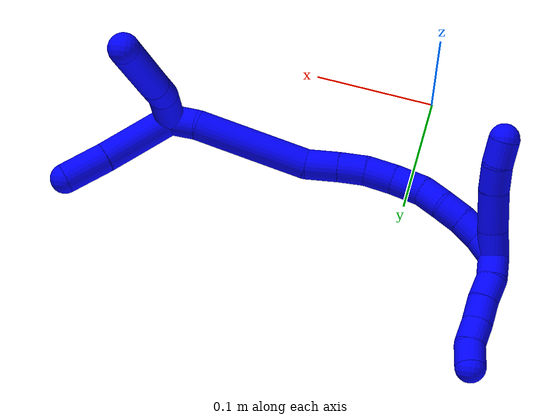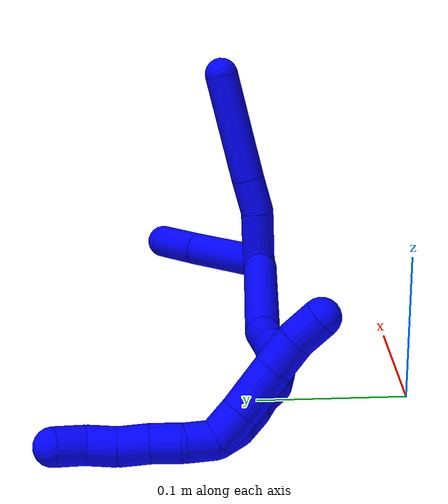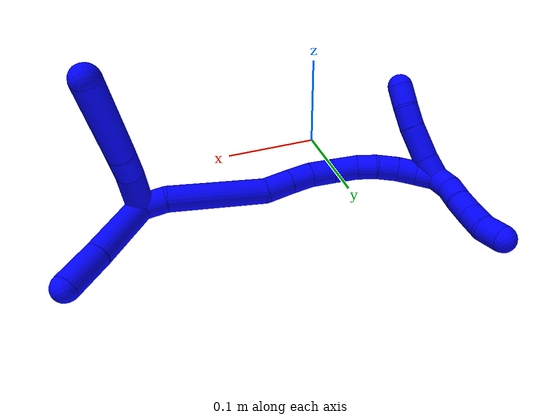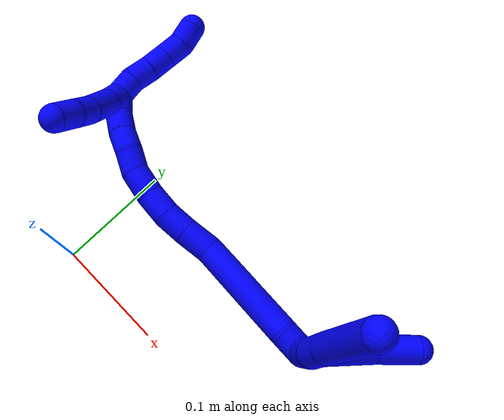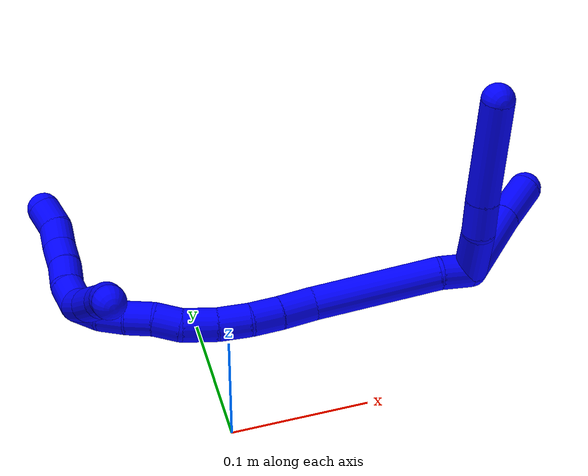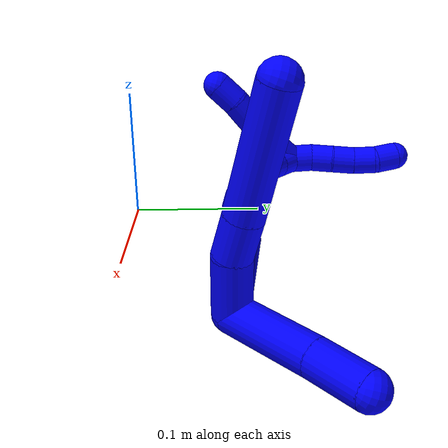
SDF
<sdf version="1.7">
 <world name="default">
  <model name="photoneo_s_sensor">
   <static>1</static>
   <pose>0 0 2 1.57079 1.57079 3.14159</pose>
   <link name="link">
    <inertial><mass>0.1</mass></inertial>
    <sensor name="sensor" type="depth">
     <update_rate>30</update_rate>
     <camera>
      <horizontal_fov>1.22</horizontal_fov>
      <image><width>1920</width><height>1200</height><format>B8G8R8</format></image>
      <clip><near>0.1</near><far>4</far></clip>
      <depth_camera><output>points</output></depth_camera>
     </camera>
     <plugin name="camera_plugin" filename="libgazebo_ros_depth_camera.so">
      <baseline>0.2</baseline>
      <alwaysOn>1</alwaysOn>
      <updateRate>0.0</updateRate>
      <cameraName>camera_ir</cameraName>
      <imageTopicName>/camera/color/image_raw</imageTopicName>
      <cameraInfoTopicName>/camera/color/camera_info</cameraInfoTopicName>
      <depthImageTopicName>/camera/depth/image_raw</depthImageTopicName>
      <depthImageCameraInfoTopicName>/camera/depth/camera_info</depthImageCameraInfoTopicName>
      <pointCloudTopicName>/camera/depth/points</pointCloudTopicName>
      <frameName>fr_optical</frameName>
      <pointCloudCutoff>0.1</pointCloudCutoff>
      <pointCloudCutoffMax>2.0</pointCloudCutoffMax>
      <distortionK1>0</distortionK1>
      <distortionK2>0</distortionK2>
      <distortionK3>0</distortionK3>
      <distortionT1>0</distortionT1>
      <distortionT2>0</distortionT2>
      <CxPrime>0</CxPrime>
      <Cx>0</Cx>
      <Cy>0</Cy>
      <focalLength>0</focalLength>
      <hackBaseline>0</hackBaseline>
     </plugin>
    </sensor>
   </link>
  </model>
  <model name="bin">
   <static>1</static>
   <link name="bottom">
    <collision name="collision-bottom">
     <pose>0 0 -0.01 0 -0 0</pose>
     <geometry><box><size>0.8 0.6 0.02</size></box></geometry>
     <surface>
      <friction><ode><mu>100</mu><mu2>100</mu2></ode></friction>
      <contact><collide_bitmask>65535</collide_bitmask></contact>
     </surface>
    </collision>
   </link>
   <link name="west_wall">
    <collision name="collision-west_wall">
     <pose>-0.41 0 0.1 0 -0 0</pose>
     <geometry><box><size>0.02 0.6 0.2</size></box></geometry>
     <surface>
      <friction><ode><mu>100</mu><mu2>100</mu2></ode></friction>
      <contact><collide_bitmask>65535</collide_bitmask></contact>
     </surface>
    </collision>
   </link>
   <link name="east_wall">
    <collision name="collision-east_wall">
     <pose>0.41 0 0.1 0 -0 0</pose>
     <geometry><box><size>0.02 0.6 0.2</size></box></geometry>
     <surface>
      <friction><ode><mu>100</mu><mu2>100</mu2></ode></friction>
      <contact><collide_bitmask>65535</collide_bitmask></contact>
     </surface>
    </collision>
   </link>
   <link name="south_wall">
    <collision name="collision-south_wall">
     <pose>0 -0.31 0.1 0 -0 0</pose>
     <geometry><box><size>0.8 0.02 0.2</size></box></geometry>
     <surface>
      <friction><ode><mu>100</mu><mu2>100</mu2></ode></friction>
      <contact><collide_bitmask>65535</collide_bitmask></contact>
     </surface>
    </collision>
   </link>
   <link name="north_wall">
    <collision name="collision-north_wall">
     <pose>0 0.31 0.1 0 -0 0</pose>
     <geometry><box><size>0.8 0.02 0.2</size></box></geometry>
     <surface>
      <friction><ode><mu>100</mu><mu2>100</mu2></ode></friction>
      <contact><collide_bitmask>65535</collide_bitmask></contact>
     </surface>
    </collision>
   </link>
  </model>
  <model name="1">
   <static>0</static>
   <link name="1">
    <collision name="collision-cylinder-e_1_2_8">
     <pose>0.000843 -0.018635 -0.007233 1.94104 0.042157 0.061574</pose>
     <geometry><cylinder><radius>0.0125</radius><length>0.040015</length></cylinder></geometry>
     <surface>
      <friction><ode><mu>1.16</mu><mu2>1.16</mu2><slip1>0</slip1><slip2>0</slip2></ode></friction>
      <contact><ode><kp>1e+06</kp><kd>1</kd><max_vel>0</max_vel><min_depth>0.001</min_depth></ode></contact>
     </surface>
    </collision>
    <visual name="visual-cylinder-e_1_2_8">
     <pose>0.000843 -0.018635 -0.007233 1.94104 0.042157 0.061574</pose>
     <geometry><cylinder><radius>0.0125</radius><length>0.040015</length></cylinder></geometry>
     <material><ambient>0 0 1 1</ambient></material>
    </visual>
    <collision name="collision-cylinder-e_2_8_9">
     <pose>0.003111 -0.050708 -0.016261 1.70355 0.10472 0.119601</pose>
     <geometry><cylinder><radius>0.0125</radius><length>0.027263</length></cylinder></geometry>
     <surface>
      <friction><ode><mu>1.16</mu><mu2>1.16</mu2><slip1>0</slip1><slip2>0</slip2></ode></friction>
      <contact><ode><kp>1e+06</kp><kd>1</kd><max_vel>0</max_vel><min_depth>0.001</min_depth></ode></contact>
     </surface>
    </collision>
    <visual name="visual-cylinder-e_2_8_9">
     <pose>0.003111 -0.050708 -0.016261 1.70355 0.10472 0.119601</pose>
     <geometry><cylinder><radius>0.0125</radius><length>0.027263</length></cylinder></geometry>
     <material><ambient>0 0 1 1</ambient></material>
    </visual>
    <collision name="collision-cylinder-e_3_9_6">
     <pose>0.009436 -0.104678 -0.024676 1.73271 0.118734 0.139639</pose>
     <geometry><cylinder><radius>0.0125</radius><length>0.082721</length></cylinder></geometry>
     <surface>
      <friction><ode><mu>1.16</mu><mu2>1.16</mu2><slip1>0</slip1><slip2>0</slip2></ode></friction>
      <contact><ode><kp>1e+06</kp><kd>1</kd><max_vel>0</max_vel><min_depth>0.001</min_depth></ode></contact>
     </surface>
    </collision>
    <visual name="visual-cylinder-e_3_9_6">
     <pose>0.009436 -0.104678 -0.024676 1.73271 0.118734 0.139639</pose>
     <geometry><cylinder><radius>0.0125</radius><length>0.082721</length></cylinder></geometry>
     <material><ambient>0 0 1 1</ambient></material>
    </visual>
    <collision name="collision-cylinder-e_1_2_10">
     <pose>0.023205 -0.007101 0.019633 0.34706 0.838148 0.155857</pose>
     <geometry><cylinder><radius>0.0125</radius><length>0.062429</length></cylinder></geometry>
     <surface>
      <friction><ode><mu>1.16</mu><mu2>1.16</mu2><slip1>0</slip1><slip2>0</slip2></ode></friction>
      <contact><ode><kp>1e+06</kp><kd>1</kd><max_vel>0</max_vel><min_depth>0.001</min_depth></ode></contact>
     </surface>
    </collision>
    <visual name="visual-cylinder-e_1_2_10">
     <pose>0.023205 -0.007101 0.019633 0.34706 0.838148 0.155857</pose>
     <geometry><cylinder><radius>0.0125</radius><length>0.062429</length></cylinder></geometry>
     <material><ambient>0 0 1 1</ambient></material>
    </visual>
    <collision name="collision-cylinder-e_2_10_5">
     <pose>0.06099 -0.018219 0.050409 0.345955 0.888512 0.165951</pose>
     <geometry><cylinder><radius>0.0125</radius><length>0.037571</length></cylinder></geometry>
     <surface>
      <friction><ode><mu>1.16</mu><mu2>1.16</mu2><slip1>0</slip1><slip2>0</slip2></ode></friction>
      <contact><ode><kp>1e+06</kp><kd>1</kd><max_vel>0</max_vel><min_depth>0.001</min_depth></ode></contact>
     </surface>
    </collision>
    <visual name="visual-cylinder-e_2_10_5">
     <pose>0.06099 -0.018219 0.050409 0.345955 0.888512 0.165951</pose>
     <geometry><cylinder><radius>0.0125</radius><length>0.037571</length></cylinder></geometry>
     <material><ambient>0 0 1 1</ambient></material>
    </visual>
    <collision name="collision-cylinder-e_1_2_11">
     <pose>-0.011835 -0.001427 0.001003 0.958294 -1.42445 -0.843315</pose>
     <geometry><cylinder><radius>0.0125</radius><length>0.023926</length></cylinder></geometry>
     <surface>
      <friction><ode><mu>1.16</mu><mu2>1.16</mu2><slip1>0</slip1><slip2>0</slip2></ode></friction>
      <contact><ode><kp>1e+06</kp><kd>1</kd><max_vel>0</max_vel><min_depth>0.001</min_depth></ode></contact>
     </surface>
    </collision>
    <visual name="visual-cylinder-e_1_2_11">
     <pose>-0.011835 -0.001427 0.001003 0.958294 -1.42445 -0.843315</pose>
     <geometry><cylinder><radius>0.0125</radius><length>0.023926</length></cylinder></geometry>
     <material><ambient>0 0 1 1</ambient></material>
    </visual>
    <collision name="collision-cylinder-e_2_11_12">
     <pose>-0.070073 0.002141 0.012131 -0.458359 -1.33213 0.362625</pose>
     <geometry><cylinder><radius>0.0125</radius><length>0.095514</length></cylinder></geometry>
     <surface>
      <friction><ode><mu>1.16</mu><mu2>1.16</mu2><slip1>0</slip1><slip2>0</slip2></ode></friction>
      <contact><ode><kp>1e+06</kp><kd>1</kd><max_vel>0</max_vel><min_depth>0.001</min_depth></ode></contact>
     </surface>
    </collision>
    <visual name="visual-cylinder-e_2_11_12">
     <pose>-0.070073 0.002141 0.012131 -0.458359 -1.33213 0.362625</pose>
     <geometry><cylinder><radius>0.0125</radius><length>0.095514</length></cylinder></geometry>
     <material><ambient>0 0 1 1</ambient></material>
    </visual>
    <collision name="collision-cylinder-e_3_12_13">
     <pose>-0.130024 0.007223 0.021778 -2.96188 -1.53498 2.95536</pose>
     <geometry><cylinder><radius>0.0125</radius><length>0.027113</length></cylinder></geometry>
     <surface>
      <friction><ode><mu>1.16</mu><mu2>1.16</mu2><slip1>0</slip1><slip2>0</slip2></ode></friction>
      <contact><ode><kp>1e+06</kp><kd>1</kd><max_vel>0</max_vel><min_depth>0.001</min_depth></ode></contact>
     </surface>
    </collision>
    <visual name="visual-cylinder-e_3_12_13">
     <pose>-0.130024 0.007223 0.021778 -2.96188 -1.53498 2.95536</pose>
     <geometry><cylinder><radius>0.0125</radius><length>0.027113</length></cylinder></geometry>
     <material><ambient>0 0 1 1</ambient></material>
    </visual>
    <collision name="collision-cylinder-e_4_13_14">
     <pose>-0.154961 0.007085 0.021463 0.943408 -1.54643 -0.92382</pose>
     <geometry><cylinder><radius>0.0125</radius><length>0.022784</length></cylinder></geometry>
     <surface>
      <friction><ode><mu>1.16</mu><mu2>1.16</mu2><slip1>0</slip1><slip2>0</slip2></ode></friction>
      <contact><ode><kp>1e+06</kp><kd>1</kd><max_vel>0</max_vel><min_depth>0.001</min_depth></ode></contact>
     </surface>
    </collision>
    <visual name="visual-cylinder-e_4_13_14">
     <pose>-0.154961 0.007085 0.021463 0.943408 -1.54643 -0.92382</pose>
     <geometry><cylinder><radius>0.0125</radius><length>0.022784</length></cylinder></geometry>
     <material><ambient>0 0 1 1</ambient></material>
    </visual>
    <collision name="collision-cylinder-e_5_14_15">
     <pose>-0.178228 0.006655 0.023856 0.092076 -1.38448 -0.076358</pose>
     <geometry><cylinder><radius>0.0125</radius><length>0.024175</length></cylinder></geometry>
     <surface>
      <friction><ode><mu>1.16</mu><mu2>1.16</mu2><slip1>0</slip1><slip2>0</slip2></ode></friction>
      <contact><ode><kp>1e+06</kp><kd>1</kd><max_vel>0</max_vel><min_depth>0.001</min_depth></ode></contact>
     </surface>
    </collision>
    <visual name="visual-cylinder-e_5_14_15">
     <pose>-0.178228 0.006655 0.023856 0.092076 -1.38448 -0.076358</pose>
     <geometry><cylinder><radius>0.0125</radius><length>0.024175</length></cylinder></geometry>
     <material><ambient>0 0 1 1</ambient></material>
    </visual>
    <collision name="collision-cylinder-e_6_15_16">
     <pose>-0.20252 0.004928 0.029423 0.427586 -1.2835 -0.321676</pose>
     <geometry><cylinder><radius>0.0125</radius><length>0.025888</length></cylinder></geometry>
     <surface>
      <friction><ode><mu>1.16</mu><mu2>1.16</mu2><slip1>0</slip1><slip2>0</slip2></ode></friction>
      <contact><ode><kp>1e+06</kp><kd>1</kd><max_vel>0</max_vel><min_depth>0.001</min_depth></ode></contact>
     </surface>
    </collision>
    <visual name="visual-cylinder-e_6_15_16">
     <pose>-0.20252 0.004928 0.029423 0.427586 -1.2835 -0.321676</pose>
     <geometry><cylinder><radius>0.0125</radius><length>0.025888</length></cylinder></geometry>
     <material><ambient>0 0 1 1</ambient></material>
    </visual>
    <collision name="collision-cylinder-e_7_16_17">
     <pose>-0.223501 0.000851 0.037608 0.485195 -1.00175 -0.269312</pose>
     <geometry><cylinder><radius>0.0125</radius><length>0.020341</length></cylinder></geometry>
     <surface>
      <friction><ode><mu>1.16</mu><mu2>1.16</mu2><slip1>0</slip1><slip2>0</slip2></ode></friction>
      <contact><ode><kp>1e+06</kp><kd>1</kd><max_vel>0</max_vel><min_depth>0.001</min_depth></ode></contact>
     </surface>
    </collision>
    <visual name="visual-cylinder-e_7_16_17">
     <pose>-0.223501 0.000851 0.037608 0.485195 -1.00175 -0.269312</pose>
     <geometry><cylinder><radius>0.0125</radius><length>0.020341</length></cylinder></geometry>
     <material><ambient>0 0 1 1</ambient></material>
    </visual>
    <collision name="collision-cylinder-e_8_17_18">
     <pose>-0.240782 -0.002171 0.047505 0.092106 -1.04373 -0.052989</pose>
     <geometry><cylinder><radius>0.0125</radius><length>0.020161</length></cylinder></geometry>
     <surface>
      <friction><ode><mu>1.16</mu><mu2>1.16</mu2><slip1>0</slip1><slip2>0</slip2></ode></friction>
      <contact><ode><kp>1e+06</kp><kd>1</kd><max_vel>0</max_vel><min_depth>0.001</min_depth></ode></contact>
     </surface>
    </collision>
    <visual name="visual-cylinder-e_8_17_18">
     <pose>-0.240782 -0.002171 0.047505 0.092106 -1.04373 -0.052989</pose>
     <geometry><cylinder><radius>0.0125</radius><length>0.020161</length></cylinder></geometry>
     <material><ambient>0 0 1 1</ambient></material>
    </visual>
    <collision name="collision-cylinder-e_9_18_19">
     <pose>-0.257344 -0.003239 0.058762 0.096572 -0.899383 -0.046641</pose>
     <geometry><cylinder><radius>0.0125</radius><length>0.020052</length></cylinder></geometry>
     <surface>
      <friction><ode><mu>1.16</mu><mu2>1.16</mu2><slip1>0</slip1><slip2>0</slip2></ode></friction>
      <contact><ode><kp>1e+06</kp><kd>1</kd><max_vel>0</max_vel><min_depth>0.001</min_depth></ode></contact>
     </surface>
    </collision>
    <visual name="visual-cylinder-e_9_18_19">
     <pose>-0.257344 -0.003239 0.058762 0.096572 -0.899383 -0.046641</pose>
     <geometry><cylinder><radius>0.0125</radius><length>0.020052</length></cylinder></geometry>
     <material><ambient>0 0 1 1</ambient></material>
    </visual>
    <collision name="collision-cylinder-e_10_19_1">
     <pose>-0.27192 -0.006137 0.072037 0.314252 -0.735678 -0.121961</pose>
     <geometry><cylinder><radius>0.0125</radius><length>0.020046</length></cylinder></geometry>
     <surface>
      <friction><ode><mu>1.16</mu><mu2>1.16</mu2><slip1>0</slip1><slip2>0</slip2></ode></friction>
      <contact><ode><kp>1e+06</kp><kd>1</kd><max_vel>0</max_vel><min_depth>0.001</min_depth></ode></contact>
     </surface>
    </collision>
    <visual name="visual-cylinder-e_10_19_1">
     <pose>-0.27192 -0.006137 0.072037 0.314252 -0.735678 -0.121961</pose>
     <geometry><cylinder><radius>0.0125</radius><length>0.020046</length></cylinder></geometry>
     <material><ambient>0 0 1 1</ambient></material>
    </visual>
    <collision name="collision-cylinder-e_1_1_20">
     <pose>-0.277113 -0.01292 0.068894 2.72758 0.136588 0.629718</pose>
     <geometry><cylinder><radius>0.0125</radius><length>0.022513</length></cylinder></geometry>
     <surface>
      <friction><ode><mu>1.16</mu><mu2>1.16</mu2><slip1>0</slip1><slip2>0</slip2></ode></friction>
      <contact><ode><kp>1e+06</kp><kd>1</kd><max_vel>0</max_vel><min_depth>0.001</min_depth></ode></contact>
     </surface>
    </collision>
    <visual name="visual-cylinder-e_1_1_20">
     <pose>-0.277113 -0.01292 0.068894 2.72758 0.136588 0.629718</pose>
     <geometry><cylinder><radius>0.0125</radius><length>0.022513</length></cylinder></geometry>
     <material><ambient>0 0 1 1</ambient></material>
    </visual>
    <collision name="collision-cylinder-e_2_20_21">
     <pose>-0.274212 -0.02554 0.043804 2.64139 0.080502 0.312732</pose>
     <geometry><cylinder><radius>0.0125</radius><length>0.034027</length></cylinder></geometry>
     <surface>
      <friction><ode><mu>1.16</mu><mu2>1.16</mu2><slip1>0</slip1><slip2>0</slip2></ode></friction>
      <contact><ode><kp>1e+06</kp><kd>1</kd><max_vel>0</max_vel><min_depth>0.001</min_depth></ode></contact>
     </surface>
    </collision>
    <visual name="visual-cylinder-e_2_20_21">
     <pose>-0.274212 -0.02554 0.043804 2.64139 0.080502 0.312732</pose>
     <geometry><cylinder><radius>0.0125</radius><length>0.034027</length></cylinder></geometry>
     <material><ambient>0 0 1 1</ambient></material>
    </visual>
    <collision name="collision-cylinder-e_3_21_22">
     <pose>-0.273079 -0.039201 0.019377 2.61664 -0.021267 -0.079118</pose>
     <geometry><cylinder><radius>0.0125</radius><length>0.022067</length></cylinder></geometry>
     <surface>
      <friction><ode><mu>1.16</mu><mu2>1.16</mu2><slip1>0</slip1><slip2>0</slip2></ode></friction>
      <contact><ode><kp>1e+06</kp><kd>1</kd><max_vel>0</max_vel><min_depth>0.001</min_depth></ode></contact>
     </surface>
    </collision>
    <visual name="visual-cylinder-e_3_21_22">
     <pose>-0.273079 -0.039201 0.019377 2.61664 -0.021267 -0.079118</pose>
     <geometry><cylinder><radius>0.0125</radius><length>0.022067</length></cylinder></geometry>
     <material><ambient>0 0 1 1</ambient></material>
    </visual>
    <collision name="collision-cylinder-e_4_22_4">
     <pose>-0.27491 -0.048619 -4e-06 2.76501 -0.149775 -0.750207</pose>
     <geometry><cylinder><radius>0.0125</radius><length>0.021393</length></cylinder></geometry>
     <surface>
      <friction><ode><mu>1.16</mu><mu2>1.16</mu2><slip1>0</slip1><slip2>0</slip2></ode></friction>
      <contact><ode><kp>1e+06</kp><kd>1</kd><max_vel>0</max_vel><min_depth>0.001</min_depth></ode></contact>
     </surface>
    </collision>
    <visual name="visual-cylinder-e_4_22_4">
     <pose>-0.27491 -0.048619 -4e-06 2.76501 -0.149775 -0.750207</pose>
     <geometry><cylinder><radius>0.0125</radius><length>0.021393</length></cylinder></geometry>
     <material><ambient>0 0 1 1</ambient></material>
    </visual>
    <collision name="collision-cylinder-e_1_1_23">
     <pose>-0.279172 -0.012144 0.088375 0.380685 -0.052654 -0.010147</pose>
     <geometry><cylinder><radius>0.0125</radius><length>0.02</length></cylinder></geometry>
     <surface>
      <friction><ode><mu>1.16</mu><mu2>1.16</mu2><slip1>0</slip1><slip2>0</slip2></ode></friction>
      <contact><ode><kp>1e+06</kp><kd>1</kd><max_vel>0</max_vel><min_depth>0.001</min_depth></ode></contact>
     </surface>
    </collision>
    <visual name="visual-cylinder-e_1_1_23">
     <pose>-0.279172 -0.012144 0.088375 0.380685 -0.052654 -0.010147</pose>
     <geometry><cylinder><radius>0.0125</radius><length>0.02</length></cylinder></geometry>
     <material><ambient>0 0 1 1</ambient></material>
    </visual>
    <collision name="collision-cylinder-e_2_23_24">
     <pose>-0.277473 -0.019207 0.106801 0.350977 0.224424 0.039956</pose>
     <geometry><cylinder><radius>0.0125</radius><length>0.02</length></cylinder></geometry>
     <surface>
      <friction><ode><mu>1.16</mu><mu2>1.16</mu2><slip1>0</slip1><slip2>0</slip2></ode></friction>
      <contact><ode><kp>1e+06</kp><kd>1</kd><max_vel>0</max_vel><min_depth>0.001</min_depth></ode></contact>
     </surface>
    </collision>
    <visual name="visual-cylinder-e_2_23_24">
     <pose>-0.277473 -0.019207 0.106801 0.350977 0.224424 0.039956</pose>
     <geometry><cylinder><radius>0.0125</radius><length>0.02</length></cylinder></geometry>
     <material><ambient>0 0 1 1</ambient></material>
    </visual>
    <collision name="collision-cylinder-e_3_24_25">
     <pose>-0.27413 -0.025543 0.125434 0.305043 0.112044 0.017241</pose>
     <geometry><cylinder><radius>0.0125</radius><length>0.02</length></cylinder></geometry>
     <surface>
      <friction><ode><mu>1.16</mu><mu2>1.16</mu2><slip1>0</slip1><slip2>0</slip2></ode></friction>
      <contact><ode><kp>1e+06</kp><kd>1</kd><max_vel>0</max_vel><min_depth>0.001</min_depth></ode></contact>
     </surface>
    </collision>
    <visual name="visual-cylinder-e_3_24_25">
     <pose>-0.27413 -0.025543 0.125434 0.305043 0.112044 0.017241</pose>
     <geometry><cylinder><radius>0.0125</radius><length>0.02</length></cylinder></geometry>
     <material><ambient>0 0 1 1</ambient></material>
    </visual>
    <collision name="collision-cylinder-e_4_25_26">
     <pose>-0.271341 -0.032792 0.143802 0.447272 0.167862 0.038264</pose>
     <geometry><cylinder><radius>0.0125</radius><length>0.02</length></cylinder></geometry>
     <surface>
      <friction><ode><mu>1.16</mu><mu2>1.16</mu2><slip1>0</slip1><slip2>0</slip2></ode></friction>
      <contact><ode><kp>1e+06</kp><kd>1</kd><max_vel>0</max_vel><min_depth>0.001</min_depth></ode></contact>
     </surface>
    </collision>
    <visual name="visual-cylinder-e_4_25_26">
     <pose>-0.271341 -0.032792 0.143802 0.447272 0.167862 0.038264</pose>
     <geometry><cylinder><radius>0.0125</radius><length>0.02</length></cylinder></geometry>
     <material><ambient>0 0 1 1</ambient></material>
    </visual>
    <collision name="collision-cylinder-e_5_26_3">
     <pose>-0.271235 -0.041574 0.161475 0.475132 -0.157103 -0.038115</pose>
     <geometry><cylinder><radius>0.0125</radius><length>0.02</length></cylinder></geometry>
     <surface>
      <friction><ode><mu>1.16</mu><mu2>1.16</mu2><slip1>0</slip1><slip2>0</slip2></ode></friction>
      <contact><ode><kp>1e+06</kp><kd>1</kd><max_vel>0</max_vel><min_depth>0.001</min_depth></ode></contact>
     </surface>
    </collision>
    <visual name="visual-cylinder-e_5_26_3">
     <pose>-0.271235 -0.041574 0.161475 0.475132 -0.157103 -0.038115</pose>
     <geometry><cylinder><radius>0.0125</radius><length>0.02</length></cylinder></geometry>
     <material><ambient>0 0 1 1</ambient></material>
    </visual>
    <collision name="collision-sphere-3">
     <pose>-0.272799 -0.046093 0.170258 0 -0 0</pose>
     <geometry><sphere><radius>0.0125</radius></sphere></geometry>
     <surface>
      <friction><ode><mu>1.16</mu><mu2>1.16</mu2><slip1>0</slip1><slip2>0</slip2></ode></friction>
      <contact><ode><kp>1e+06</kp><kd>1</kd><max_vel>0</max_vel><min_depth>0.001</min_depth></ode></contact>
     </surface>
    </collision>
    <visual name="visual-sphere-3">
     <pose>-0.272799 -0.046093 0.170258 0 -0 0</pose>
     <geometry><sphere><radius>0.0125</radius></sphere></geometry>
     <material><ambient>0 0 1 1</ambient></material>
    </visual>
    <collision name="collision-sphere-26">
     <pose>-0.26967 -0.037056 0.152692 0 -0 0</pose>
     <geometry><sphere><radius>0.0125</radius></sphere></geometry>
     <surface>
      <friction><ode><mu>1.16</mu><mu2>1.16</mu2><slip1>0</slip1><slip2>0</slip2></ode></friction>
      <contact><ode><kp>1e+06</kp><kd>1</kd><max_vel>0</max_vel><min_depth>0.001</min_depth></ode></contact>
     </surface>
    </collision>
    <visual name="visual-sphere-26">
     <pose>-0.26967 -0.037056 0.152692 0 -0 0</pose>
     <geometry><sphere><radius>0.0125</radius></sphere></geometry>
     <material><ambient>0 0 1 1</ambient></material>
    </visual>
    <collision name="collision-sphere-25">
     <pose>-0.273011 -0.028528 0.134913 0 -0 0</pose>
     <geometry><sphere><radius>0.0125</radius></sphere></geometry>
     <surface>
      <friction><ode><mu>1.16</mu><mu2>1.16</mu2><slip1>0</slip1><slip2>0</slip2></ode></friction>
      <contact><ode><kp>1e+06</kp><kd>1</kd><max_vel>0</max_vel><min_depth>0.001</min_depth></ode></contact>
     </surface>
    </collision>
    <visual name="visual-sphere-25">
     <pose>-0.273011 -0.028528 0.134913 0 -0 0</pose>
     <geometry><sphere><radius>0.0125</radius></sphere></geometry>
     <material><ambient>0 0 1 1</ambient></material>
    </visual>
    <collision name="collision-sphere-24">
     <pose>-0.275248 -0.022559 0.115956 0 -0 0</pose>
     <geometry><sphere><radius>0.0125</radius></sphere></geometry>
     <surface>
      <friction><ode><mu>1.16</mu><mu2>1.16</mu2><slip1>0</slip1><slip2>0</slip2></ode></friction>
      <contact><ode><kp>1e+06</kp><kd>1</kd><max_vel>0</max_vel><min_depth>0.001</min_depth></ode></contact>
     </surface>
    </collision>
    <visual name="visual-sphere-24">
     <pose>-0.275248 -0.022559 0.115956 0 -0 0</pose>
     <geometry><sphere><radius>0.0125</radius></sphere></geometry>
     <material><ambient>0 0 1 1</ambient></material>
    </visual>
    <collision name="collision-sphere-23">
     <pose>-0.279699 -0.015855 0.097646 0 -0 0</pose>
     <geometry><sphere><radius>0.0125</radius></sphere></geometry>
     <surface>
      <friction><ode><mu>1.16</mu><mu2>1.16</mu2><slip1>0</slip1><slip2>0</slip2></ode></friction>
      <contact><ode><kp>1e+06</kp><kd>1</kd><max_vel>0</max_vel><min_depth>0.001</min_depth></ode></contact>
     </surface>
    </collision>
    <visual name="visual-sphere-23">
     <pose>-0.279699 -0.015855 0.097646 0 -0 0</pose>
     <geometry><sphere><radius>0.0125</radius></sphere></geometry>
     <material><ambient>0 0 1 1</ambient></material>
    </visual>
    <collision name="collision-sphere-4">
     <pose>-0.276506 -0.052509 -0.009839 0 -0 0</pose>
     <geometry><sphere><radius>0.0125</radius></sphere></geometry>
     <surface>
      <friction><ode><mu>1.16</mu><mu2>1.16</mu2><slip1>0</slip1><slip2>0</slip2></ode></friction>
      <contact><ode><kp>1e+06</kp><kd>1</kd><max_vel>0</max_vel><min_depth>0.001</min_depth></ode></contact>
     </surface>
    </collision>
    <visual name="visual-sphere-4">
     <pose>-0.276506 -0.052509 -0.009839 0 -0 0</pose>
     <geometry><sphere><radius>0.0125</radius></sphere></geometry>
     <material><ambient>0 0 1 1</ambient></material>
    </visual>
    <collision name="collision-sphere-22">
     <pose>-0.273313 -0.04473 0.009832 0 -0 0</pose>
     <geometry><sphere><radius>0.0125</radius></sphere></geometry>
     <surface>
      <friction><ode><mu>1.16</mu><mu2>1.16</mu2><slip1>0</slip1><slip2>0</slip2></ode></friction>
      <contact><ode><kp>1e+06</kp><kd>1</kd><max_vel>0</max_vel><min_depth>0.001</min_depth></ode></contact>
     </surface>
    </collision>
    <visual name="visual-sphere-22">
     <pose>-0.273313 -0.04473 0.009832 0 -0 0</pose>
     <geometry><sphere><radius>0.0125</radius></sphere></geometry>
     <material><ambient>0 0 1 1</ambient></material>
    </visual>
    <collision name="collision-sphere-21">
     <pose>-0.272844 -0.033673 0.028923 0 -0 0</pose>
     <geometry><sphere><radius>0.0125</radius></sphere></geometry>
     <surface>
      <friction><ode><mu>1.16</mu><mu2>1.16</mu2><slip1>0</slip1><slip2>0</slip2></ode></friction>
      <contact><ode><kp>1e+06</kp><kd>1</kd><max_vel>0</max_vel><min_depth>0.001</min_depth></ode></contact>
     </surface>
    </collision>
    <visual name="visual-sphere-21">
     <pose>-0.272844 -0.033673 0.028923 0 -0 0</pose>
     <geometry><sphere><radius>0.0125</radius></sphere></geometry>
     <material><ambient>0 0 1 1</ambient></material>
    </visual>
    <collision name="collision-sphere-20">
     <pose>-0.27558 -0.017406 0.058684 0 -0 0</pose>
     <geometry><sphere><radius>0.0125</radius></sphere></geometry>
     <surface>
      <friction><ode><mu>1.16</mu><mu2>1.16</mu2><slip1>0</slip1><slip2>0</slip2></ode></friction>
      <contact><ode><kp>1e+06</kp><kd>1</kd><max_vel>0</max_vel><min_depth>0.001</min_depth></ode></contact>
     </surface>
    </collision>
    <visual name="visual-sphere-20">
     <pose>-0.27558 -0.017406 0.058684 0 -0 0</pose>
     <geometry><sphere><radius>0.0125</radius></sphere></geometry>
     <material><ambient>0 0 1 1</ambient></material>
    </visual>
    <collision name="collision-sphere-5">
     <pose>0.07557 -0.022236 0.061553 0 -0 0</pose>
     <geometry><sphere><radius>0.0125</radius></sphere></geometry>
     <surface>
      <friction><ode><mu>1.16</mu><mu2>1.16</mu2><slip1>0</slip1><slip2>0</slip2></ode></friction>
      <contact><ode><kp>1e+06</kp><kd>1</kd><max_vel>0</max_vel><min_depth>0.001</min_depth></ode></contact>
     </surface>
    </collision>
    <visual name="visual-sphere-5">
     <pose>0.07557 -0.022236 0.061553 0 -0 0</pose>
     <geometry><sphere><radius>0.0125</radius></sphere></geometry>
     <material><ambient>0 0 1 1</ambient></material>
    </visual>
    <collision name="collision-sphere-10">
     <pose>0.04641 -0.014202 0.039265 0 -0 0</pose>
     <geometry><sphere><radius>0.0125</radius></sphere></geometry>
     <surface>
      <friction><ode><mu>1.16</mu><mu2>1.16</mu2><slip1>0</slip1><slip2>0</slip2></ode></friction>
      <contact><ode><kp>1e+06</kp><kd>1</kd><max_vel>0</max_vel><min_depth>0.001</min_depth></ode></contact>
     </surface>
    </collision>
    <visual name="visual-sphere-10">
     <pose>0.04641 -0.014202 0.039265 0 -0 0</pose>
     <geometry><sphere><radius>0.0125</radius></sphere></geometry>
     <material><ambient>0 0 1 1</ambient></material>
    </visual>
    <collision name="collision-sphere-6">
     <pose>0.014335 -0.145211 -0.031297 0 -0 0</pose>
     <geometry><sphere><radius>0.0125</radius></sphere></geometry>
     <surface>
      <friction><ode><mu>1.16</mu><mu2>1.16</mu2><slip1>0</slip1><slip2>0</slip2></ode></friction>
      <contact><ode><kp>1e+06</kp><kd>1</kd><max_vel>0</max_vel><min_depth>0.001</min_depth></ode></contact>
     </surface>
    </collision>
    <visual name="visual-sphere-6">
     <pose>0.014335 -0.145211 -0.031297 0 -0 0</pose>
     <geometry><sphere><radius>0.0125</radius></sphere></geometry>
     <material><ambient>0 0 1 1</ambient></material>
    </visual>
    <collision name="collision-sphere-9">
     <pose>0.004536 -0.064146 -0.018055 0 -0 0</pose>
     <geometry><sphere><radius>0.0125</radius></sphere></geometry>
     <surface>
      <friction><ode><mu>1.16</mu><mu2>1.16</mu2><slip1>0</slip1><slip2>0</slip2></ode></friction>
      <contact><ode><kp>1e+06</kp><kd>1</kd><max_vel>0</max_vel><min_depth>0.001</min_depth></ode></contact>
     </surface>
    </collision>
    <visual name="visual-sphere-9">
     <pose>0.004536 -0.064146 -0.018055 0 -0 0</pose>
     <geometry><sphere><radius>0.0125</radius></sphere></geometry>
     <material><ambient>0 0 1 1</ambient></material>
    </visual>
    <collision name="collision-sphere-2">
     <geometry><sphere><radius>0.0125</radius></sphere></geometry>
     <surface>
      <friction><ode><mu>1.16</mu><mu2>1.16</mu2><slip1>0</slip1><slip2>0</slip2></ode></friction>
      <contact><ode><kp>1e+06</kp><kd>1</kd><max_vel>0</max_vel><min_depth>0.001</min_depth></ode></contact>
     </surface>
    </collision>
    <visual name="visual-sphere-2">
     <geometry><sphere><radius>0.0125</radius></sphere></geometry>
     <material><ambient>0 0 1 1</ambient></material>
    </visual>
    <collision name="collision-sphere-19">
     <pose>-0.265193 -0.00384 0.06497 0 -0 0</pose>
     <geometry><sphere><radius>0.0125</radius></sphere></geometry>
     <surface>
      <friction><ode><mu>1.16</mu><mu2>1.16</mu2><slip1>0</slip1><slip2>0</slip2></ode></friction>
      <contact><ode><kp>1e+06</kp><kd>1</kd><max_vel>0</max_vel><min_depth>0.001</min_depth></ode></contact>
     </surface>
    </collision>
    <visual name="visual-sphere-19">
     <pose>-0.265193 -0.00384 0.06497 0 -0 0</pose>
     <geometry><sphere><radius>0.0125</radius></sphere></geometry>
     <material><ambient>0 0 1 1</ambient></material>
    </visual>
    <collision name="collision-sphere-8">
     <pose>0.001686 -0.037271 -0.014466 0 -0 0</pose>
     <geometry><sphere><radius>0.0125</radius></sphere></geometry>
     <surface>
      <friction><ode><mu>1.16</mu><mu2>1.16</mu2><slip1>0</slip1><slip2>0</slip2></ode></friction>
      <contact><ode><kp>1e+06</kp><kd>1</kd><max_vel>0</max_vel><min_depth>0.001</min_depth></ode></contact>
     </surface>
    </collision>
    <visual name="visual-sphere-8">
     <pose>0.001686 -0.037271 -0.014466 0 -0 0</pose>
     <geometry><sphere><radius>0.0125</radius></sphere></geometry>
     <material><ambient>0 0 1 1</ambient></material>
    </visual>
    <collision name="collision-sphere-11">
     <pose>-0.02367 -0.002855 0.002006 0 -0 0</pose>
     <geometry><sphere><radius>0.0125</radius></sphere></geometry>
     <surface>
      <friction><ode><mu>1.16</mu><mu2>1.16</mu2><slip1>0</slip1><slip2>0</slip2></ode></friction>
      <contact><ode><kp>1e+06</kp><kd>1</kd><max_vel>0</max_vel><min_depth>0.001</min_depth></ode></contact>
     </surface>
    </collision>
    <visual name="visual-sphere-11">
     <pose>-0.02367 -0.002855 0.002006 0 -0 0</pose>
     <geometry><sphere><radius>0.0125</radius></sphere></geometry>
     <material><ambient>0 0 1 1</ambient></material>
    </visual>
    <collision name="collision-sphere-12">
     <pose>-0.116476 0.007137 0.022255 0 -0 0</pose>
     <geometry><sphere><radius>0.0125</radius></sphere></geometry>
     <surface>
      <friction><ode><mu>1.16</mu><mu2>1.16</mu2><slip1>0</slip1><slip2>0</slip2></ode></friction>
      <contact><ode><kp>1e+06</kp><kd>1</kd><max_vel>0</max_vel><min_depth>0.001</min_depth></ode></contact>
     </surface>
    </collision>
    <visual name="visual-sphere-12">
     <pose>-0.116476 0.007137 0.022255 0 -0 0</pose>
     <geometry><sphere><radius>0.0125</radius></sphere></geometry>
     <material><ambient>0 0 1 1</ambient></material>
    </visual>
    <collision name="collision-sphere-13">
     <pose>-0.143572 0.00731 0.0213 0 -0 0</pose>
     <geometry><sphere><radius>0.0125</radius></sphere></geometry>
     <surface>
      <friction><ode><mu>1.16</mu><mu2>1.16</mu2><slip1>0</slip1><slip2>0</slip2></ode></friction>
      <contact><ode><kp>1e+06</kp><kd>1</kd><max_vel>0</max_vel><min_depth>0.001</min_depth></ode></contact>
     </surface>
    </collision>
    <visual name="visual-sphere-13">
     <pose>-0.143572 0.00731 0.0213 0 -0 0</pose>
     <geometry><sphere><radius>0.0125</radius></sphere></geometry>
     <material><ambient>0 0 1 1</ambient></material>
    </visual>
    <collision name="collision-sphere-14">
     <pose>-0.16635 0.006861 0.021626 0 -0 0</pose>
     <geometry><sphere><radius>0.0125</radius></sphere></geometry>
     <surface>
      <friction><ode><mu>1.16</mu><mu2>1.16</mu2><slip1>0</slip1><slip2>0</slip2></ode></friction>
      <contact><ode><kp>1e+06</kp><kd>1</kd><max_vel>0</max_vel><min_depth>0.001</min_depth></ode></contact>
     </surface>
    </collision>
    <visual name="visual-sphere-14">
     <pose>-0.16635 0.006861 0.021626 0 -0 0</pose>
     <geometry><sphere><radius>0.0125</radius></sphere></geometry>
     <material><ambient>0 0 1 1</ambient></material>
    </visual>
    <collision name="collision-sphere-15">
     <pose>-0.190106 0.006449 0.026085 0 -0 0</pose>
     <geometry><sphere><radius>0.0125</radius></sphere></geometry>
     <surface>
      <friction><ode><mu>1.16</mu><mu2>1.16</mu2><slip1>0</slip1><slip2>0</slip2></ode></friction>
      <contact><ode><kp>1e+06</kp><kd>1</kd><max_vel>0</max_vel><min_depth>0.001</min_depth></ode></contact>
     </surface>
    </collision>
    <visual name="visual-sphere-15">
     <pose>-0.190106 0.006449 0.026085 0 -0 0</pose>
     <geometry><sphere><radius>0.0125</radius></sphere></geometry>
     <material><ambient>0 0 1 1</ambient></material>
    </visual>
    <collision name="collision-sphere-16">
     <pose>-0.214934 0.003407 0.032761 0 -0 0</pose>
     <geometry><sphere><radius>0.0125</radius></sphere></geometry>
     <surface>
      <friction><ode><mu>1.16</mu><mu2>1.16</mu2><slip1>0</slip1><slip2>0</slip2></ode></friction>
      <contact><ode><kp>1e+06</kp><kd>1</kd><max_vel>0</max_vel><min_depth>0.001</min_depth></ode></contact>
     </surface>
    </collision>
    <visual name="visual-sphere-16">
     <pose>-0.214934 0.003407 0.032761 0 -0 0</pose>
     <geometry><sphere><radius>0.0125</radius></sphere></geometry>
     <material><ambient>0 0 1 1</ambient></material>
    </visual>
    <collision name="collision-sphere-17">
     <pose>-0.232069 -0.001705 0.042456 0 -0 0</pose>
     <geometry><sphere><radius>0.0125</radius></sphere></geometry>
     <surface>
      <friction><ode><mu>1.16</mu><mu2>1.16</mu2><slip1>0</slip1><slip2>0</slip2></ode></friction>
      <contact><ode><kp>1e+06</kp><kd>1</kd><max_vel>0</max_vel><min_depth>0.001</min_depth></ode></contact>
     </surface>
    </collision>
    <visual name="visual-sphere-17">
     <pose>-0.232069 -0.001705 0.042456 0 -0 0</pose>
     <geometry><sphere><radius>0.0125</radius></sphere></geometry>
     <material><ambient>0 0 1 1</ambient></material>
    </visual>
    <collision name="collision-sphere-18">
     <pose>-0.249494 -0.002637 0.052554 0 -0 0</pose>
     <geometry><sphere><radius>0.0125</radius></sphere></geometry>
     <surface>
      <friction><ode><mu>1.16</mu><mu2>1.16</mu2><slip1>0</slip1><slip2>0</slip2></ode></friction>
      <contact><ode><kp>1e+06</kp><kd>1</kd><max_vel>0</max_vel><min_depth>0.001</min_depth></ode></contact>
     </surface>
    </collision>
    <visual name="visual-sphere-18">
     <pose>-0.249494 -0.002637 0.052554 0 -0 0</pose>
     <geometry><sphere><radius>0.0125</radius></sphere></geometry>
     <material><ambient>0 0 1 1</ambient></material>
    </visual>
    <collision name="collision-sphere-1">
     <pose>-0.278646 -0.008434 0.079104 0 -0 0</pose>
     <geometry><sphere><radius>0.0125</radius></sphere></geometry>
     <surface>
      <friction><ode><mu>1.16</mu><mu2>1.16</mu2><slip1>0</slip1><slip2>0</slip2></ode></friction>
      <contact><ode><kp>1e+06</kp><kd>1</kd><max_vel>0</max_vel><min_depth>0.001</min_depth></ode></contact>
     </surface>
    </collision>
    <visual name="visual-sphere-1">
     <pose>-0.278646 -0.008434 0.079104 0 -0 0</pose>
     <geometry><sphere><radius>0.0125</radius></sphere></geometry>
     <material><ambient>0 0 1 1</ambient></material>
    </visual>
    <inertial>
     <pose>-0.1252 -0.022672 0.032371 0 -0 0</pose>
     <mass>0.75</mass>
     <inertia>
      <ixx>0.000119</ixx>
      <ixy>0</ixy>
      <ixz>0</ixz>
      <iyy>0.000107</iyy>
      <iyz>0</iyz>
      <izz>0.000135</izz>
     </inertia>
    </inertial>
   </link>
   <pose>0.204009 0.083364 0.018875 -1.95536 0.064891 0.100374</pose>
  </model>
 </world>
</sdf>
